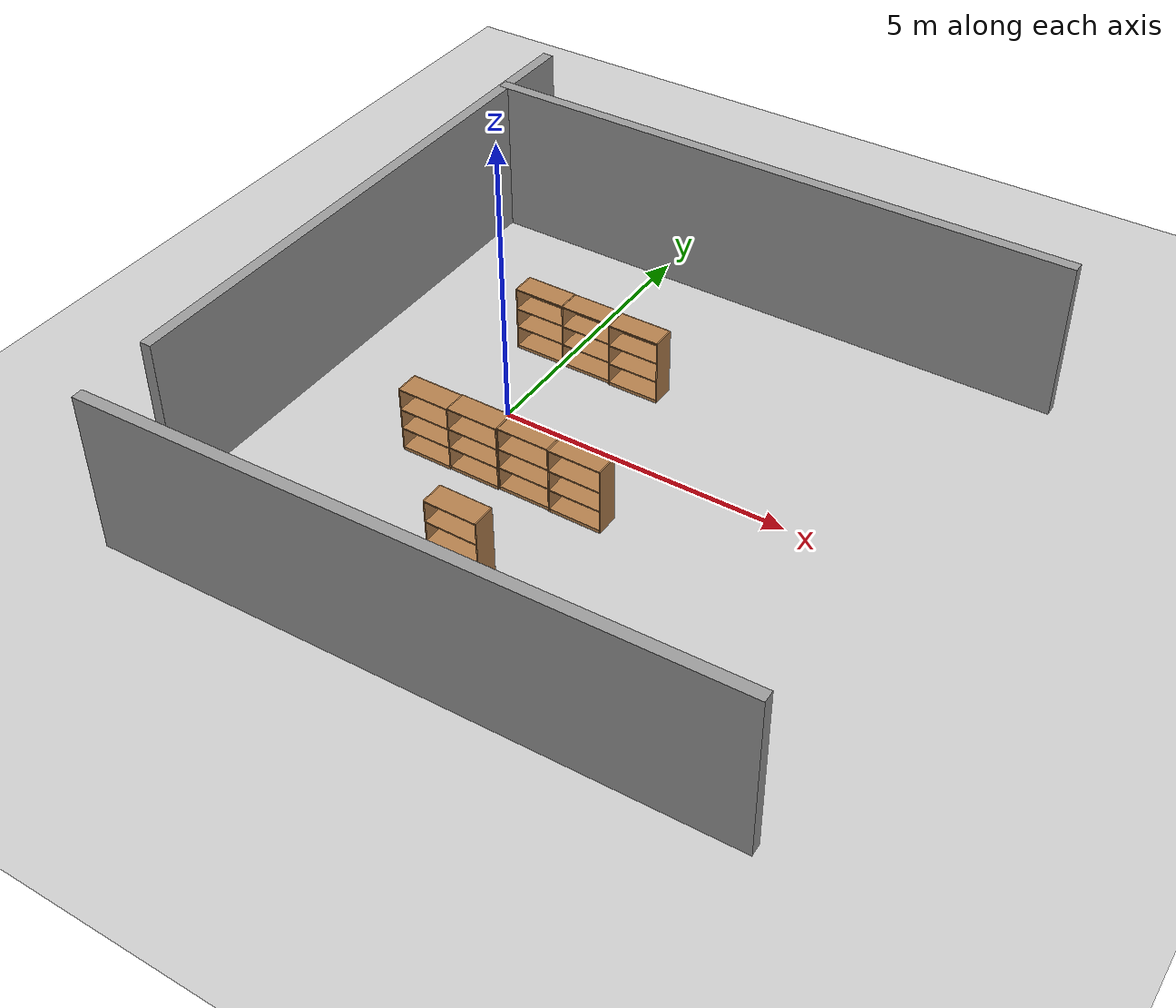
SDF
<sdf version="1.7">
 <world name="default">
  <model name="ground_plane">
   <static>1</static>
   <link name="link">
    <collision name="collision">
     <geometry><plane><normal>0 0 1</normal><size>100 100</size></plane></geometry>
     <surface><friction><ode><mu>100</mu><mu2>50</mu2></ode></friction></surface>
    </collision>
    <visual name="visual">
     <cast_shadows>0</cast_shadows>
     <geometry><plane><normal>0 0 1</normal><size>100 100</size></plane></geometry>
     <material>
      <script><uri>file://media/materials/scripts/gazebo.material</uri><name>Gazebo/Grey</name></script>
     </material>
    </visual>
   </link>
  </model>
  <model name="grey_wall_1">
   <link name="link">
    <pose>0 0 1.4 0 -0 0</pose>
    <inertial>
     <inertia><ixx>0</ixx><ixy>0</ixy><ixz>0</ixz><iyy>0</iyy><iyz>0</iyz><izz>0</izz></inertia>
     <mass>0</mass>
    </inertial>
    <visual name="visual">
     <cast_shadows>0</cast_shadows>
     <geometry><box><size>10.6479 0.2 2.8</size></box></geometry>
     <material>
      <script>
       <uri>model://grey_wall/materials/scripts</uri>
       <uri>model://grey_wall/materials/textures</uri>
       <name>vrc/grey_wall</name>
      </script>
      <shader type="pixel"/>
     </material>
    </visual>
    <collision name="collision">
     <geometry><box><size>10.6479 0.2 2.8</size></box></geometry>
     <surface>
      <friction>
       <ode><mu>1</mu><mu2>1</mu2><fdir1>0 0 0</fdir1><slip1>0</slip1><slip2>0</slip2></ode>
       <torsional>
        <coefficient>1</coefficient>
        <patch_radius>0</patch_radius>
        <surface_radius>0</surface_radius>
        <use_patch_radius>1</use_patch_radius>
        <ode><slip>0</slip></ode>
       </torsional>
      </friction>
      <bounce><restitution_coefficient>0</restitution_coefficient><threshold>1e+06</threshold></bounce>
      <contact>
       <collide_without_contact>0</collide_without_contact>
       <collide_without_contact_bitmask>1</collide_without_contact_bitmask>
       <collide_bitmask>1</collide_bitmask>
       <ode>
        <soft_cfm>0</soft_cfm>
        <soft_erp>0.2</soft_erp>
        <kp>1e+13</kp>
        <kd>1</kd>
        <max_vel>0.01</max_vel>
        <min_depth>0</min_depth>
       </ode>
       <bullet>
        <split_impulse>1</split_impulse>
        <split_impulse_penetration_threshold>-0.01</split_impulse_penetration_threshold>
        <soft_cfm>0</soft_cfm>
        <soft_erp>0.2</soft_erp>
        <kp>1e+13</kp>
        <kd>1</kd>
       </bullet>
      </contact>
     </surface>
    </collision>
   </link>
   <static>1</static>
   <pose>1.9927 4.77272 0 0 -0 0</pose>
  </model>
  <model name="grey_wall_2">
   <link name="link">
    <pose>-1.42165 -0.037006 1.4 0 -0 0</pose>
    <inertial>
     <inertia><ixx>0</ixx><ixy>0</ixy><ixz>0</ixz><iyy>0</iyy><iyz>0</iyz><izz>0</izz></inertia>
     <mass>0</mass>
    </inertial>
    <visual name="visual">
     <cast_shadows>0</cast_shadows>
     <geometry><box><size>10.349 0.2 2.8</size></box></geometry>
     <material>
      <script>
       <uri>model://grey_wall/materials/scripts</uri>
       <uri>model://grey_wall/materials/textures</uri>
       <name>vrc/grey_wall</name>
      </script>
      <shader type="pixel"/>
     </material>
    </visual>
    <collision name="collision">
     <geometry><box><size>10.349 0.2 2.8</size></box></geometry>
     <surface>
      <friction>
       <ode><mu>1</mu><mu2>1</mu2><fdir1>0 0 0</fdir1><slip1>0</slip1><slip2>0</slip2></ode>
       <torsional>
        <coefficient>1</coefficient>
        <patch_radius>0</patch_radius>
        <surface_radius>0</surface_radius>
        <use_patch_radius>1</use_patch_radius>
        <ode><slip>0</slip></ode>
       </torsional>
      </friction>
      <bounce><restitution_coefficient>0</restitution_coefficient><threshold>1e+06</threshold></bounce>
      <contact>
       <collide_without_contact>0</collide_without_contact>
       <collide_without_contact_bitmask>1</collide_without_contact_bitmask>
       <collide_bitmask>1</collide_bitmask>
       <ode>
        <soft_cfm>0</soft_cfm>
        <soft_erp>0.2</soft_erp>
        <kp>1e+13</kp>
        <kd>1</kd>
        <max_vel>0.01</max_vel>
        <min_depth>0</min_depth>
       </ode>
       <bullet>
        <split_impulse>1</split_impulse>
        <split_impulse_penetration_threshold>-0.01</split_impulse_penetration_threshold>
        <soft_cfm>0</soft_cfm>
        <soft_erp>0.2</soft_erp>
        <kp>1e+13</kp>
        <kd>1</kd>
       </bullet>
      </contact>
     </surface>
    </collision>
   </link>
   <static>1</static>
   <pose>-3.20604 -0.491906 0 0 0 -1.56841</pose>
  </model>
  <model name="grey_wall_1_clone">
   <link name="link">
    <pose>0 0 1.4 0 -0 0</pose>
    <inertial>
     <inertia><ixx>0</ixx><ixy>0</ixy><ixz>0</ixz><iyy>0</iyy><iyz>0</iyz><izz>0</izz></inertia>
     <mass>0</mass>
    </inertial>
    <visual name="visual">
     <cast_shadows>0</cast_shadows>
     <geometry><box><size>10.6479 0.2 2.8</size></box></geometry>
     <material>
      <script>
       <uri>model://grey_wall/materials/scripts</uri>
       <uri>model://grey_wall/materials/textures</uri>
       <name>vrc/grey_wall</name>
      </script>
      <shader type="pixel"/>
     </material>
    </visual>
    <collision name="collision">
     <geometry><box><size>10.6479 0.2 2.8</size></box></geometry>
     <surface>
      <friction>
       <ode><mu>1</mu><mu2>1</mu2><fdir1>0 0 0</fdir1><slip1>0</slip1><slip2>0</slip2></ode>
       <torsional>
        <coefficient>1</coefficient>
        <patch_radius>0</patch_radius>
        <surface_radius>0</surface_radius>
        <use_patch_radius>1</use_patch_radius>
        <ode><slip>0</slip></ode>
       </torsional>
      </friction>
      <bounce><restitution_coefficient>0</restitution_coefficient><threshold>1e+06</threshold></bounce>
      <contact>
       <collide_without_contact>0</collide_without_contact>
       <collide_without_contact_bitmask>1</collide_without_contact_bitmask>
       <collide_bitmask>1</collide_bitmask>
       <ode>
        <soft_cfm>0</soft_cfm>
        <soft_erp>0.2</soft_erp>
        <kp>1e+13</kp>
        <kd>1</kd>
        <max_vel>0.01</max_vel>
        <min_depth>0</min_depth>
       </ode>
       <bullet>
        <split_impulse>1</split_impulse>
        <split_impulse_penetration_threshold>-0.01</split_impulse_penetration_threshold>
        <soft_cfm>0</soft_cfm>
        <soft_erp>0.2</soft_erp>
        <kp>1e+13</kp>
        <kd>1</kd>
       </bullet>
      </contact>
     </surface>
    </collision>
   </link>
   <static>1</static>
   <pose>2.09142 -5.43143 0 0 -0 0.025834</pose>
  </model>
  <model name="bookshelf">
   <static>1</static>
   <link name="link">
    <inertial><mass>1</mass></inertial>
    <collision name="back">
     <pose>0 0.005 0.6 0 -0 0</pose>
     <geometry><box><size>0.9 0.01 1.2</size></box></geometry>
    </collision>
    <visual name="visual1">
     <pose>0 0.005 0.6 0 -0 0</pose>
     <geometry><box><size>0.9 0.01 1.2</size></box></geometry>
     <material>
      <script><uri>file://media/materials/scripts/gazebo.material</uri><name>Gazebo/Wood</name></script>
     </material>
    </visual>
    <collision name="left_side">
     <pose>0.45 -0.195 0.6 0 -0 0</pose>
     <geometry><box><size>0.02 0.4 1.2</size></box></geometry>
    </collision>
    <visual name="visual2">
     <pose>0.45 -0.195 0.6 0 -0 0</pose>
     <geometry><box><size>0.02 0.4 1.2</size></box></geometry>
     <material>
      <script><uri>file://media/materials/scripts/gazebo.material</uri><name>Gazebo/Wood</name></script>
     </material>
    </visual>
    <collision name="right_side">
     <pose>-0.45 -0.195 0.6 0 -0 0</pose>
     <geometry><box><size>0.02 0.4 1.2</size></box></geometry>
    </collision>
    <visual name="visual3">
     <pose>-0.45 -0.195 0.6 0 -0 0</pose>
     <geometry><box><size>0.02 0.4 1.2</size></box></geometry>
     <material>
      <script><uri>file://media/materials/scripts/gazebo.material</uri><name>Gazebo/Wood</name></script>
     </material>
    </visual>
    <collision name="bottom">
     <pose>0 -0.195 0.03 0 -0 0</pose>
     <geometry><box><size>0.88 0.4 0.06</size></box></geometry>
    </collision>
    <visual name="visual4">
     <pose>0 -0.195 0.03 0 -0 0</pose>
     <geometry><box><size>0.88 0.4 0.06</size></box></geometry>
     <material>
      <script><uri>file://media/materials/scripts/gazebo.material</uri><name>Gazebo/Wood</name></script>
     </material>
    </visual>
    <collision name="top">
     <pose>0 -0.195 1.19 0 -0 0</pose>
     <geometry><box><size>0.88 0.4 0.02</size></box></geometry>
    </collision>
    <visual name="visual5">
     <pose>0 -0.195 1.19 0 -0 0</pose>
     <geometry><box><size>0.88 0.4 0.02</size></box></geometry>
     <material>
      <script><uri>file://media/materials/scripts/gazebo.material</uri><name>Gazebo/Wood</name></script>
     </material>
    </visual>
    <collision name="low_shelf">
     <pose>0 -0.195 0.43 0 -0 0</pose>
     <geometry><box><size>0.88 0.4 0.02</size></box></geometry>
    </collision>
    <visual name="visual6">
     <pose>0 -0.195 0.43 0 -0 0</pose>
     <geometry><box><size>0.88 0.4 0.02</size></box></geometry>
     <material>
      <script><uri>file://media/materials/scripts/gazebo.material</uri><name>Gazebo/Wood</name></script>
     </material>
    </visual>
    <collision name="high_shelf">
     <pose>0 -0.195 0.8 0 -0 0</pose>
     <geometry><box><size>0.88 0.4 0.02</size></box></geometry>
    </collision>
    <visual name="visual7">
     <pose>0 -0.195 0.8 0 -0 0</pose>
     <geometry><box><size>0.88 0.4 0.02</size></box></geometry>
     <material>
      <script><uri>file://media/materials/scripts/gazebo.material</uri><name>Gazebo/Wood</name></script>
     </material>
    </visual>
   </link>
   <pose>-0.425219 1.95814 0 0 -0 0</pose>
  </model>
  <model name="bookshelf_0">
   <static>1</static>
   <link name="link">
    <inertial><mass>1</mass></inertial>
    <collision name="back">
     <pose>0 0.005 0.6 0 -0 0</pose>
     <geometry><box><size>0.9 0.01 1.2</size></box></geometry>
    </collision>
    <visual name="visual1">
     <pose>0 0.005 0.6 0 -0 0</pose>
     <geometry><box><size>0.9 0.01 1.2</size></box></geometry>
     <material>
      <script><uri>file://media/materials/scripts/gazebo.material</uri><name>Gazebo/Wood</name></script>
     </material>
    </visual>
    <collision name="left_side">
     <pose>0.45 -0.195 0.6 0 -0 0</pose>
     <geometry><box><size>0.02 0.4 1.2</size></box></geometry>
    </collision>
    <visual name="visual2">
     <pose>0.45 -0.195 0.6 0 -0 0</pose>
     <geometry><box><size>0.02 0.4 1.2</size></box></geometry>
     <material>
      <script><uri>file://media/materials/scripts/gazebo.material</uri><name>Gazebo/Wood</name></script>
     </material>
    </visual>
    <collision name="right_side">
     <pose>-0.45 -0.195 0.6 0 -0 0</pose>
     <geometry><box><size>0.02 0.4 1.2</size></box></geometry>
    </collision>
    <visual name="visual3">
     <pose>-0.45 -0.195 0.6 0 -0 0</pose>
     <geometry><box><size>0.02 0.4 1.2</size></box></geometry>
     <material>
      <script><uri>file://media/materials/scripts/gazebo.material</uri><name>Gazebo/Wood</name></script>
     </material>
    </visual>
    <collision name="bottom">
     <pose>0 -0.195 0.03 0 -0 0</pose>
     <geometry><box><size>0.88 0.4 0.06</size></box></geometry>
    </collision>
    <visual name="visual4">
     <pose>0 -0.195 0.03 0 -0 0</pose>
     <geometry><box><size>0.88 0.4 0.06</size></box></geometry>
     <material>
      <script><uri>file://media/materials/scripts/gazebo.material</uri><name>Gazebo/Wood</name></script>
     </material>
    </visual>
    <collision name="top">
     <pose>0 -0.195 1.19 0 -0 0</pose>
     <geometry><box><size>0.88 0.4 0.02</size></box></geometry>
    </collision>
    <visual name="visual5">
     <pose>0 -0.195 1.19 0 -0 0</pose>
     <geometry><box><size>0.88 0.4 0.02</size></box></geometry>
     <material>
      <script><uri>file://media/materials/scripts/gazebo.material</uri><name>Gazebo/Wood</name></script>
     </material>
    </visual>
    <collision name="low_shelf">
     <pose>0 -0.195 0.43 0 -0 0</pose>
     <geometry><box><size>0.88 0.4 0.02</size></box></geometry>
    </collision>
    <visual name="visual6">
     <pose>0 -0.195 0.43 0 -0 0</pose>
     <geometry><box><size>0.88 0.4 0.02</size></box></geometry>
     <material>
      <script><uri>file://media/materials/scripts/gazebo.material</uri><name>Gazebo/Wood</name></script>
     </material>
    </visual>
    <collision name="high_shelf">
     <pose>0 -0.195 0.8 0 -0 0</pose>
     <geometry><box><size>0.88 0.4 0.02</size></box></geometry>
    </collision>
    <visual name="visual7">
     <pose>0 -0.195 0.8 0 -0 0</pose>
     <geometry><box><size>0.88 0.4 0.02</size></box></geometry>
     <material>
      <script><uri>file://media/materials/scripts/gazebo.material</uri><name>Gazebo/Wood</name></script>
     </material>
    </visual>
   </link>
   <pose>0.480718 1.94963 0 0 -0 0</pose>
  </model>
  <model name="bookshelf_0_clone">
   <static>1</static>
   <link name="link">
    <inertial><mass>1</mass></inertial>
    <collision name="back">
     <pose>0 0.005 0.6 0 -0 0</pose>
     <geometry><box><size>0.9 0.01 1.2</size></box></geometry>
    </collision>
    <visual name="visual1">
     <pose>0 0.005 0.6 0 -0 0</pose>
     <geometry><box><size>0.9 0.01 1.2</size></box></geometry>
     <material>
      <script><uri>file://media/materials/scripts/gazebo.material</uri><name>Gazebo/Wood</name></script>
     </material>
    </visual>
    <collision name="left_side">
     <pose>0.45 -0.195 0.6 0 -0 0</pose>
     <geometry><box><size>0.02 0.4 1.2</size></box></geometry>
    </collision>
    <visual name="visual2">
     <pose>0.45 -0.195 0.6 0 -0 0</pose>
     <geometry><box><size>0.02 0.4 1.2</size></box></geometry>
     <material>
      <script><uri>file://media/materials/scripts/gazebo.material</uri><name>Gazebo/Wood</name></script>
     </material>
    </visual>
    <collision name="right_side">
     <pose>-0.45 -0.195 0.6 0 -0 0</pose>
     <geometry><box><size>0.02 0.4 1.2</size></box></geometry>
    </collision>
    <visual name="visual3">
     <pose>-0.45 -0.195 0.6 0 -0 0</pose>
     <geometry><box><size>0.02 0.4 1.2</size></box></geometry>
     <material>
      <script><uri>file://media/materials/scripts/gazebo.material</uri><name>Gazebo/Wood</name></script>
     </material>
    </visual>
    <collision name="bottom">
     <pose>0 -0.195 0.03 0 -0 0</pose>
     <geometry><box><size>0.88 0.4 0.06</size></box></geometry>
    </collision>
    <visual name="visual4">
     <pose>0 -0.195 0.03 0 -0 0</pose>
     <geometry><box><size>0.88 0.4 0.06</size></box></geometry>
     <material>
      <script><uri>file://media/materials/scripts/gazebo.material</uri><name>Gazebo/Wood</name></script>
     </material>
    </visual>
    <collision name="top">
     <pose>0 -0.195 1.19 0 -0 0</pose>
     <geometry><box><size>0.88 0.4 0.02</size></box></geometry>
    </collision>
    <visual name="visual5">
     <pose>0 -0.195 1.19 0 -0 0</pose>
     <geometry><box><size>0.88 0.4 0.02</size></box></geometry>
     <material>
      <script><uri>file://media/materials/scripts/gazebo.material</uri><name>Gazebo/Wood</name></script>
     </material>
    </visual>
    <collision name="low_shelf">
     <pose>0 -0.195 0.43 0 -0 0</pose>
     <geometry><box><size>0.88 0.4 0.02</size></box></geometry>
    </collision>
    <visual name="visual6">
     <pose>0 -0.195 0.43 0 -0 0</pose>
     <geometry><box><size>0.88 0.4 0.02</size></box></geometry>
     <material>
      <script><uri>file://media/materials/scripts/gazebo.material</uri><name>Gazebo/Wood</name></script>
     </material>
    </visual>
    <collision name="high_shelf">
     <pose>0 -0.195 0.8 0 -0 0</pose>
     <geometry><box><size>0.88 0.4 0.02</size></box></geometry>
    </collision>
    <visual name="visual7">
     <pose>0 -0.195 0.8 0 -0 0</pose>
     <geometry><box><size>0.88 0.4 0.02</size></box></geometry>
     <material>
      <script><uri>file://media/materials/scripts/gazebo.material</uri><name>Gazebo/Wood</name></script>
     </material>
    </visual>
   </link>
   <pose>1.40192 1.92253 0 0 -0 0</pose>
  </model>
  <model name="bookshelf_0_clone_4">
   <static>1</static>
   <link name="link">
    <inertial><mass>1</mass></inertial>
    <collision name="back">
     <pose>0 0.005 0.6 0 -0 0</pose>
     <geometry><box><size>0.9 0.01 1.2</size></box></geometry>
    </collision>
    <visual name="visual1">
     <pose>0 0.005 0.6 0 -0 0</pose>
     <geometry><box><size>0.9 0.01 1.2</size></box></geometry>
     <material>
      <script><uri>file://media/materials/scripts/gazebo.material</uri><name>Gazebo/Wood</name></script>
     </material>
    </visual>
    <collision name="left_side">
     <pose>0.45 -0.195 0.6 0 -0 0</pose>
     <geometry><box><size>0.02 0.4 1.2</size></box></geometry>
    </collision>
    <visual name="visual2">
     <pose>0.45 -0.195 0.6 0 -0 0</pose>
     <geometry><box><size>0.02 0.4 1.2</size></box></geometry>
     <material>
      <script><uri>file://media/materials/scripts/gazebo.material</uri><name>Gazebo/Wood</name></script>
     </material>
    </visual>
    <collision name="right_side">
     <pose>-0.45 -0.195 0.6 0 -0 0</pose>
     <geometry><box><size>0.02 0.4 1.2</size></box></geometry>
    </collision>
    <visual name="visual3">
     <pose>-0.45 -0.195 0.6 0 -0 0</pose>
     <geometry><box><size>0.02 0.4 1.2</size></box></geometry>
     <material>
      <script><uri>file://media/materials/scripts/gazebo.material</uri><name>Gazebo/Wood</name></script>
     </material>
    </visual>
    <collision name="bottom">
     <pose>0 -0.195 0.03 0 -0 0</pose>
     <geometry><box><size>0.88 0.4 0.06</size></box></geometry>
    </collision>
    <visual name="visual4">
     <pose>0 -0.195 0.03 0 -0 0</pose>
     <geometry><box><size>0.88 0.4 0.06</size></box></geometry>
     <material>
      <script><uri>file://media/materials/scripts/gazebo.material</uri><name>Gazebo/Wood</name></script>
     </material>
    </visual>
    <collision name="top">
     <pose>0 -0.195 1.19 0 -0 0</pose>
     <geometry><box><size>0.88 0.4 0.02</size></box></geometry>
    </collision>
    <visual name="visual5">
     <pose>0 -0.195 1.19 0 -0 0</pose>
     <geometry><box><size>0.88 0.4 0.02</size></box></geometry>
     <material>
      <script><uri>file://media/materials/scripts/gazebo.material</uri><name>Gazebo/Wood</name></script>
     </material>
    </visual>
    <collision name="low_shelf">
     <pose>0 -0.195 0.43 0 -0 0</pose>
     <geometry><box><size>0.88 0.4 0.02</size></box></geometry>
    </collision>
    <visual name="visual6">
     <pose>0 -0.195 0.43 0 -0 0</pose>
     <geometry><box><size>0.88 0.4 0.02</size></box></geometry>
     <material>
      <script><uri>file://media/materials/scripts/gazebo.material</uri><name>Gazebo/Wood</name></script>
     </material>
    </visual>
    <collision name="high_shelf">
     <pose>0 -0.195 0.8 0 -0 0</pose>
     <geometry><box><size>0.88 0.4 0.02</size></box></geometry>
    </collision>
    <visual name="visual7">
     <pose>0 -0.195 0.8 0 -0 0</pose>
     <geometry><box><size>0.88 0.4 0.02</size></box></geometry>
     <material>
      <script><uri>file://media/materials/scripts/gazebo.material</uri><name>Gazebo/Wood</name></script>
     </material>
    </visual>
   </link>
   <pose>-0.428406 -1.18088 0 0 -0 0</pose>
  </model>
  <model name="bookshelf_0_clone_5">
   <static>1</static>
   <link name="link">
    <inertial><mass>1</mass></inertial>
    <collision name="back">
     <pose>0 0.005 0.6 0 -0 0</pose>
     <geometry><box><size>0.9 0.01 1.2</size></box></geometry>
    </collision>
    <visual name="visual1">
     <pose>0 0.005 0.6 0 -0 0</pose>
     <geometry><box><size>0.9 0.01 1.2</size></box></geometry>
     <material>
      <script><uri>file://media/materials/scripts/gazebo.material</uri><name>Gazebo/Wood</name></script>
     </material>
    </visual>
    <collision name="left_side">
     <pose>0.45 -0.195 0.6 0 -0 0</pose>
     <geometry><box><size>0.02 0.4 1.2</size></box></geometry>
    </collision>
    <visual name="visual2">
     <pose>0.45 -0.195 0.6 0 -0 0</pose>
     <geometry><box><size>0.02 0.4 1.2</size></box></geometry>
     <material>
      <script><uri>file://media/materials/scripts/gazebo.material</uri><name>Gazebo/Wood</name></script>
     </material>
    </visual>
    <collision name="right_side">
     <pose>-0.45 -0.195 0.6 0 -0 0</pose>
     <geometry><box><size>0.02 0.4 1.2</size></box></geometry>
    </collision>
    <visual name="visual3">
     <pose>-0.45 -0.195 0.6 0 -0 0</pose>
     <geometry><box><size>0.02 0.4 1.2</size></box></geometry>
     <material>
      <script><uri>file://media/materials/scripts/gazebo.material</uri><name>Gazebo/Wood</name></script>
     </material>
    </visual>
    <collision name="bottom">
     <pose>0 -0.195 0.03 0 -0 0</pose>
     <geometry><box><size>0.88 0.4 0.06</size></box></geometry>
    </collision>
    <visual name="visual4">
     <pose>0 -0.195 0.03 0 -0 0</pose>
     <geometry><box><size>0.88 0.4 0.06</size></box></geometry>
     <material>
      <script><uri>file://media/materials/scripts/gazebo.material</uri><name>Gazebo/Wood</name></script>
     </material>
    </visual>
    <collision name="top">
     <pose>0 -0.195 1.19 0 -0 0</pose>
     <geometry><box><size>0.88 0.4 0.02</size></box></geometry>
    </collision>
    <visual name="visual5">
     <pose>0 -0.195 1.19 0 -0 0</pose>
     <geometry><box><size>0.88 0.4 0.02</size></box></geometry>
     <material>
      <script><uri>file://media/materials/scripts/gazebo.material</uri><name>Gazebo/Wood</name></script>
     </material>
    </visual>
    <collision name="low_shelf">
     <pose>0 -0.195 0.43 0 -0 0</pose>
     <geometry><box><size>0.88 0.4 0.02</size></box></geometry>
    </collision>
    <visual name="visual6">
     <pose>0 -0.195 0.43 0 -0 0</pose>
     <geometry><box><size>0.88 0.4 0.02</size></box></geometry>
     <material>
      <script><uri>file://media/materials/scripts/gazebo.material</uri><name>Gazebo/Wood</name></script>
     </material>
    </visual>
    <collision name="high_shelf">
     <pose>0 -0.195 0.8 0 -0 0</pose>
     <geometry><box><size>0.88 0.4 0.02</size></box></geometry>
    </collision>
    <visual name="visual7">
     <pose>0 -0.195 0.8 0 -0 0</pose>
     <geometry><box><size>0.88 0.4 0.02</size></box></geometry>
     <material>
      <script><uri>file://media/materials/scripts/gazebo.material</uri><name>Gazebo/Wood</name></script>
     </material>
    </visual>
   </link>
   <pose>0.465206 -1.16757 0 0 -0 0</pose>
  </model>
  <model name="bookshelf_0_clone_6">
   <static>1</static>
   <link name="link">
    <inertial><mass>1</mass></inertial>
    <collision name="back">
     <pose>0 0.005 0.6 0 -0 0</pose>
     <geometry><box><size>0.9 0.01 1.2</size></box></geometry>
    </collision>
    <visual name="visual1">
     <pose>0 0.005 0.6 0 -0 0</pose>
     <geometry><box><size>0.9 0.01 1.2</size></box></geometry>
     <material>
      <script><uri>file://media/materials/scripts/gazebo.material</uri><name>Gazebo/Wood</name></script>
     </material>
    </visual>
    <collision name="left_side">
     <pose>0.45 -0.195 0.6 0 -0 0</pose>
     <geometry><box><size>0.02 0.4 1.2</size></box></geometry>
    </collision>
    <visual name="visual2">
     <pose>0.45 -0.195 0.6 0 -0 0</pose>
     <geometry><box><size>0.02 0.4 1.2</size></box></geometry>
     <material>
      <script><uri>file://media/materials/scripts/gazebo.material</uri><name>Gazebo/Wood</name></script>
     </material>
    </visual>
    <collision name="right_side">
     <pose>-0.45 -0.195 0.6 0 -0 0</pose>
     <geometry><box><size>0.02 0.4 1.2</size></box></geometry>
    </collision>
    <visual name="visual3">
     <pose>-0.45 -0.195 0.6 0 -0 0</pose>
     <geometry><box><size>0.02 0.4 1.2</size></box></geometry>
     <material>
      <script><uri>file://media/materials/scripts/gazebo.material</uri><name>Gazebo/Wood</name></script>
     </material>
    </visual>
    <collision name="bottom">
     <pose>0 -0.195 0.03 0 -0 0</pose>
     <geometry><box><size>0.88 0.4 0.06</size></box></geometry>
    </collision>
    <visual name="visual4">
     <pose>0 -0.195 0.03 0 -0 0</pose>
     <geometry><box><size>0.88 0.4 0.06</size></box></geometry>
     <material>
      <script><uri>file://media/materials/scripts/gazebo.material</uri><name>Gazebo/Wood</name></script>
     </material>
    </visual>
    <collision name="top">
     <pose>0 -0.195 1.19 0 -0 0</pose>
     <geometry><box><size>0.88 0.4 0.02</size></box></geometry>
    </collision>
    <visual name="visual5">
     <pose>0 -0.195 1.19 0 -0 0</pose>
     <geometry><box><size>0.88 0.4 0.02</size></box></geometry>
     <material>
      <script><uri>file://media/materials/scripts/gazebo.material</uri><name>Gazebo/Wood</name></script>
     </material>
    </visual>
    <collision name="low_shelf">
     <pose>0 -0.195 0.43 0 -0 0</pose>
     <geometry><box><size>0.88 0.4 0.02</size></box></geometry>
    </collision>
    <visual name="visual6">
     <pose>0 -0.195 0.43 0 -0 0</pose>
     <geometry><box><size>0.88 0.4 0.02</size></box></geometry>
     <material>
      <script><uri>file://media/materials/scripts/gazebo.material</uri><name>Gazebo/Wood</name></script>
     </material>
    </visual>
    <collision name="high_shelf">
     <pose>0 -0.195 0.8 0 -0 0</pose>
     <geometry><box><size>0.88 0.4 0.02</size></box></geometry>
    </collision>
    <visual name="visual7">
     <pose>0 -0.195 0.8 0 -0 0</pose>
     <geometry><box><size>0.88 0.4 0.02</size></box></geometry>
     <material>
      <script><uri>file://media/materials/scripts/gazebo.material</uri><name>Gazebo/Wood</name></script>
     </material>
    </visual>
   </link>
   <pose>1.37458 -1.14392 0 0 -0 0</pose>
  </model>
  <model name="bookshelf_0_clone_7">
   <static>1</static>
   <link name="link">
    <inertial><mass>1</mass></inertial>
    <collision name="back">
     <pose>0 0.005 0.6 0 -0 0</pose>
     <geometry><box><size>0.9 0.01 1.2</size></box></geometry>
    </collision>
    <visual name="visual1">
     <pose>0 0.005 0.6 0 -0 0</pose>
     <geometry><box><size>0.9 0.01 1.2</size></box></geometry>
     <material>
      <script><uri>file://media/materials/scripts/gazebo.material</uri><name>Gazebo/Wood</name></script>
     </material>
    </visual>
    <collision name="left_side">
     <pose>0.45 -0.195 0.6 0 -0 0</pose>
     <geometry><box><size>0.02 0.4 1.2</size></box></geometry>
    </collision>
    <visual name="visual2">
     <pose>0.45 -0.195 0.6 0 -0 0</pose>
     <geometry><box><size>0.02 0.4 1.2</size></box></geometry>
     <material>
      <script><uri>file://media/materials/scripts/gazebo.material</uri><name>Gazebo/Wood</name></script>
     </material>
    </visual>
    <collision name="right_side">
     <pose>-0.45 -0.195 0.6 0 -0 0</pose>
     <geometry><box><size>0.02 0.4 1.2</size></box></geometry>
    </collision>
    <visual name="visual3">
     <pose>-0.45 -0.195 0.6 0 -0 0</pose>
     <geometry><box><size>0.02 0.4 1.2</size></box></geometry>
     <material>
      <script><uri>file://media/materials/scripts/gazebo.material</uri><name>Gazebo/Wood</name></script>
     </material>
    </visual>
    <collision name="bottom">
     <pose>0 -0.195 0.03 0 -0 0</pose>
     <geometry><box><size>0.88 0.4 0.06</size></box></geometry>
    </collision>
    <visual name="visual4">
     <pose>0 -0.195 0.03 0 -0 0</pose>
     <geometry><box><size>0.88 0.4 0.06</size></box></geometry>
     <material>
      <script><uri>file://media/materials/scripts/gazebo.material</uri><name>Gazebo/Wood</name></script>
     </material>
    </visual>
    <collision name="top">
     <pose>0 -0.195 1.19 0 -0 0</pose>
     <geometry><box><size>0.88 0.4 0.02</size></box></geometry>
    </collision>
    <visual name="visual5">
     <pose>0 -0.195 1.19 0 -0 0</pose>
     <geometry><box><size>0.88 0.4 0.02</size></box></geometry>
     <material>
      <script><uri>file://media/materials/scripts/gazebo.material</uri><name>Gazebo/Wood</name></script>
     </material>
    </visual>
    <collision name="low_shelf">
     <pose>0 -0.195 0.43 0 -0 0</pose>
     <geometry><box><size>0.88 0.4 0.02</size></box></geometry>
    </collision>
    <visual name="visual6">
     <pose>0 -0.195 0.43 0 -0 0</pose>
     <geometry><box><size>0.88 0.4 0.02</size></box></geometry>
     <material>
      <script><uri>file://media/materials/scripts/gazebo.material</uri><name>Gazebo/Wood</name></script>
     </material>
    </visual>
    <collision name="high_shelf">
     <pose>0 -0.195 0.8 0 -0 0</pose>
     <geometry><box><size>0.88 0.4 0.02</size></box></geometry>
    </collision>
    <visual name="visual7">
     <pose>0 -0.195 0.8 0 -0 0</pose>
     <geometry><box><size>0.88 0.4 0.02</size></box></geometry>
     <material>
      <script><uri>file://media/materials/scripts/gazebo.material</uri><name>Gazebo/Wood</name></script>
     </material>
    </visual>
   </link>
   <pose>2.29293 -1.15641 0 0 -0 0</pose>
  </model>
  <model name="bookshelf_0_clone_11">
   <static>1</static>
   <link name="link">
    <inertial><mass>1</mass></inertial>
    <collision name="back">
     <pose>0 0.005 0.6 0 -0 0</pose>
     <geometry><box><size>0.9 0.01 1.2</size></box></geometry>
    </collision>
    <visual name="visual1">
     <pose>0 0.005 0.6 0 -0 0</pose>
     <geometry><box><size>0.9 0.01 1.2</size></box></geometry>
     <material>
      <script><uri>file://media/materials/scripts/gazebo.material</uri><name>Gazebo/Wood</name></script>
     </material>
    </visual>
    <collision name="left_side">
     <pose>0.45 -0.195 0.6 0 -0 0</pose>
     <geometry><box><size>0.02 0.4 1.2</size></box></geometry>
    </collision>
    <visual name="visual2">
     <pose>0.45 -0.195 0.6 0 -0 0</pose>
     <geometry><box><size>0.02 0.4 1.2</size></box></geometry>
     <material>
      <script><uri>file://media/materials/scripts/gazebo.material</uri><name>Gazebo/Wood</name></script>
     </material>
    </visual>
    <collision name="right_side">
     <pose>-0.45 -0.195 0.6 0 -0 0</pose>
     <geometry><box><size>0.02 0.4 1.2</size></box></geometry>
    </collision>
    <visual name="visual3">
     <pose>-0.45 -0.195 0.6 0 -0 0</pose>
     <geometry><box><size>0.02 0.4 1.2</size></box></geometry>
     <material>
      <script><uri>file://media/materials/scripts/gazebo.material</uri><name>Gazebo/Wood</name></script>
     </material>
    </visual>
    <collision name="bottom">
     <pose>0 -0.195 0.03 0 -0 0</pose>
     <geometry><box><size>0.88 0.4 0.06</size></box></geometry>
    </collision>
    <visual name="visual4">
     <pose>0 -0.195 0.03 0 -0 0</pose>
     <geometry><box><size>0.88 0.4 0.06</size></box></geometry>
     <material>
      <script><uri>file://media/materials/scripts/gazebo.material</uri><name>Gazebo/Wood</name></script>
     </material>
    </visual>
    <collision name="top">
     <pose>0 -0.195 1.19 0 -0 0</pose>
     <geometry><box><size>0.88 0.4 0.02</size></box></geometry>
    </collision>
    <visual name="visual5">
     <pose>0 -0.195 1.19 0 -0 0</pose>
     <geometry><box><size>0.88 0.4 0.02</size></box></geometry>
     <material>
      <script><uri>file://media/materials/scripts/gazebo.material</uri><name>Gazebo/Wood</name></script>
     </material>
    </visual>
    <collision name="low_shelf">
     <pose>0 -0.195 0.43 0 -0 0</pose>
     <geometry><box><size>0.88 0.4 0.02</size></box></geometry>
    </collision>
    <visual name="visual6">
     <pose>0 -0.195 0.43 0 -0 0</pose>
     <geometry><box><size>0.88 0.4 0.02</size></box></geometry>
     <material>
      <script><uri>file://media/materials/scripts/gazebo.material</uri><name>Gazebo/Wood</name></script>
     </material>
    </visual>
    <collision name="high_shelf">
     <pose>0 -0.195 0.8 0 -0 0</pose>
     <geometry><box><size>0.88 0.4 0.02</size></box></geometry>
    </collision>
    <visual name="visual7">
     <pose>0 -0.195 0.8 0 -0 0</pose>
     <geometry><box><size>0.88 0.4 0.02</size></box></geometry>
     <material>
      <script><uri>file://media/materials/scripts/gazebo.material</uri><name>Gazebo/Wood</name></script>
     </material>
    </visual>
   </link>
   <pose>1.42124 -3.01011 0 0 -0 0</pose>
  </model>
 </world>
</sdf>
